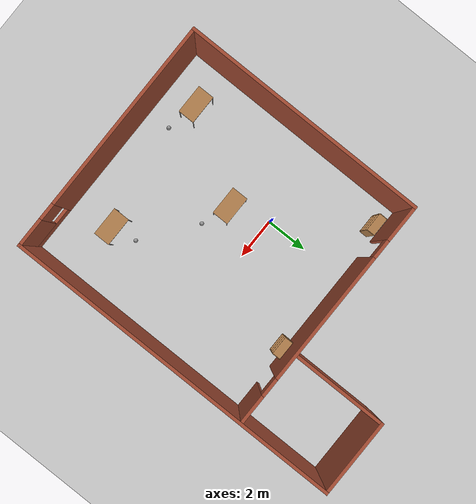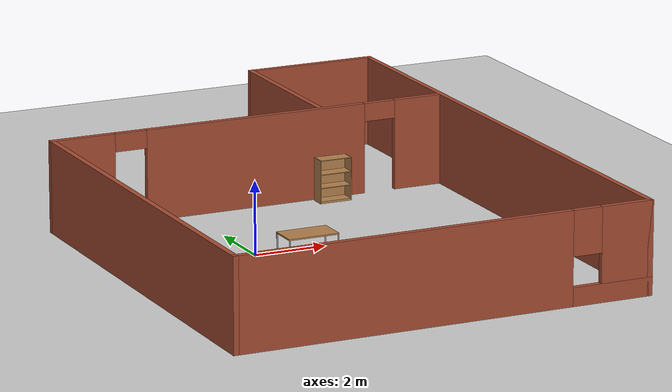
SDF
<sdf version="1.6">
 <world name="default">
  <light name="sun" type="directional">
   <pose>0 0 10 0 -0 0</pose>
   <diffuse>0.8 0.8 0.8 1</diffuse>
   <specular>0.1 0.1 0.1 1</specular>
   <attenuation>
    <range>1000</range>
    <constant>0.9</constant>
    <linear>0.01</linear>
    <quadratic>0.001</quadratic>
   </attenuation>
   <direction>-0.5 0.5 -1</direction>
  </light>
  <model name="ground_plane">
   <static>1</static>
   <link name="link">
    <collision name="collision">
     <geometry><plane><normal>0 0 1</normal><size>100 100</size></plane></geometry>
     <surface><friction><ode><mu>100</mu><mu2>50</mu2></ode></friction></surface>
    </collision>
    <visual name="visual">
     <cast_shadows>0</cast_shadows>
     <geometry><plane><normal>0 0 1</normal><size>100 100</size></plane></geometry>
     <material>
      <script><uri>file://media/materials/scripts/gazebo.material</uri><name>Gazebo/Grey</name></script>
     </material>
    </visual>
   </link>
  </model>
  <gravity>0 0 -9.8</gravity>
  <magnetic_field>6e-06 2.3e-05 -4.2e-05</magnetic_field>
  <atmosphere type="adiabatic"/>
  <physics name="default_physics" default="0" type="ode">
   <max_step_size>0.001</max_step_size>
   <real_time_factor>1</real_time_factor>
   <real_time_update_rate>1000</real_time_update_rate>
  </physics>
  <scene><ambient>0.4 0.4 0.4 1</ambient><background>0.7 0.7 0.7 1</background><shadows>1</shadows></scene>
  <spherical_coordinates>
   <surface_model>EARTH_WGS84</surface_model>
   <latitude_deg>0</latitude_deg>
   <longitude_deg>0</longitude_deg>
   <elevation>0</elevation>
   <heading_deg>0</heading_deg>
  </spherical_coordinates>
  <model name="building01">
   <pose>1.77557 0.63986 0 0 -0 0</pose>
   <link name="Wall_13">
    <collision name="Wall_13_Collision">
     <geometry><box><size>11.75 0.15 2.5</size></box></geometry>
     <pose>0 0 1.25 0 -0 0</pose>
    </collision>
    <visual name="Wall_13_Visual">
     <pose>0 0 1.25 0 -0 0</pose>
     <geometry><box><size>11.75 0.15 2.5</size></box></geometry>
     <material>
      <script><uri>file://media/materials/scripts/gazebo.material</uri><name>Gazebo/Bricks</name></script>
      <ambient>0.921569 0.807843 0.615686 1</ambient>
     </material>
    </visual>
    <pose>-5.675 -2.25 0 0 0 -1.5708</pose>
   </link>
   <link name="Wall_14">
    <pose>0 -8.05 0 0 -0 0</pose>
    <visual name="Wall_14_Visual_0">
     <pose>-1.12749 0 1.25 0 -0 0</pose>
     <geometry><box><size>9.24501 0.15 2.5</size></box></geometry>
     <material>
      <script><uri>file://media/materials/scripts/gazebo.material</uri><name>Gazebo/Bricks</name></script>
      <ambient>0.921569 0.807843 0.615686 1</ambient>
     </material>
    </visual>
    <collision name="Wall_14_Collision_0">
     <geometry><box><size>9.24501 0.15 2.5</size></box></geometry>
     <pose>-1.12749 0 1.25 0 -0 0</pose>
    </collision>
    <visual name="Wall_14_Visual_1">
     <pose>4.62251 0 0.25 0 -0 0</pose>
     <geometry><box><size>2.25499 0.15 0.5</size></box></geometry>
     <material>
      <script><uri>file://media/materials/scripts/gazebo.material</uri><name>Gazebo/Bricks</name></script>
      <ambient>0.921569 0.807843 0.615686 1</ambient>
     </material>
    </visual>
    <collision name="Wall_14_Collision_1">
     <geometry><box><size>2.25499 0.15 0.5</size></box></geometry>
     <pose>4.62251 0 0.25 0 -0 0</pose>
    </collision>
    <visual name="Wall_14_Visual_2">
     <pose>5.0225 0 1.5 0 -0 0</pose>
     <geometry><box><size>1.45499 0.15 2</size></box></geometry>
     <material>
      <script><uri>file://media/materials/scripts/gazebo.material</uri><name>Gazebo/Bricks</name></script>
      <ambient>0.921569 0.807843 0.615686 1</ambient>
     </material>
    </visual>
    <collision name="Wall_14_Collision_2">
     <geometry><box><size>1.45499 0.15 2</size></box></geometry>
     <pose>5.0225 0 1.5 0 -0 0</pose>
    </collision>
    <visual name="Wall_14_Visual_3">
     <pose>3.89501 0 1.9 0 -0 0</pose>
     <geometry><box><size>0.8 0.15 1.2</size></box></geometry>
     <material>
      <script><uri>file://media/materials/scripts/gazebo.material</uri><name>Gazebo/Bricks</name></script>
      <ambient>0.921569 0.807843 0.615686 1</ambient>
     </material>
    </visual>
    <collision name="Wall_14_Collision_3">
     <geometry><box><size>0.8 0.15 1.2</size></box></geometry>
     <pose>3.89501 0 1.9 0 -0 0</pose>
    </collision>
   </link>
   <link name="Wall_15">
    <collision name="Wall_15_Collision">
     <geometry><box><size>16.25 0.15 2.5</size></box></geometry>
     <pose>0 0 1.25 0 -0 0</pose>
    </collision>
    <visual name="Wall_15_Visual">
     <pose>0 0 1.25 0 -0 0</pose>
     <geometry><box><size>16.25 0.15 2.5</size></box></geometry>
     <material>
      <script><uri>file://media/materials/scripts/gazebo.material</uri><name>Gazebo/Bricks</name></script>
      <ambient>0.921569 0.807843 0.615686 1</ambient>
     </material>
    </visual>
    <pose>5.675 0 0 0 -0 1.5708</pose>
   </link>
   <link name="Wall_16">
    <collision name="Wall_16_Collision">
     <geometry><box><size>3.75 0.15 2.5</size></box></geometry>
     <pose>0 0 1.25 0 -0 0</pose>
    </collision>
    <visual name="Wall_16_Visual">
     <pose>0 0 1.25 0 -0 0</pose>
     <geometry><box><size>3.75 0.15 2.5</size></box></geometry>
     <material>
      <script><uri>file://media/materials/scripts/gazebo.material</uri><name>Gazebo/Bricks</name></script>
      <ambient>0.921569 0.807843 0.615686 1</ambient>
     </material>
    </visual>
    <pose>3.875 8.05 0 0 -0 3.14159</pose>
   </link>
   <link name="Wall_24">
    <pose>0 3.55 0 0 -0 0</pose>
    <visual name="Wall_24_Visual_0">
     <pose>-4.83761 0 1.25 0 -0 0</pose>
     <geometry><box><size>1.82477 0.15 2.5</size></box></geometry>
     <material>
      <script><uri>file://media/materials/scripts/gazebo.material</uri><name>Gazebo/Bricks</name></script>
      <ambient>0.921569 0.807843 0.615686 1</ambient>
     </material>
    </visual>
    <collision name="Wall_24_Collision_0">
     <geometry><box><size>1.82477 0.15 2.5</size></box></geometry>
     <pose>-4.83761 0 1.25 0 -0 0</pose>
    </collision>
    <visual name="Wall_24_Visual_1">
     <pose>0.156304 0 1.25 0 -0 0</pose>
     <geometry><box><size>6.36306 0.15 2.5</size></box></geometry>
     <material>
      <script><uri>file://media/materials/scripts/gazebo.material</uri><name>Gazebo/Bricks</name></script>
      <ambient>0.921569 0.807843 0.615686 1</ambient>
     </material>
    </visual>
    <collision name="Wall_24_Collision_1">
     <geometry><box><size>6.36306 0.15 2.5</size></box></geometry>
     <pose>0.156304 0 1.25 0 -0 0</pose>
    </collision>
    <visual name="Wall_24_Visual_2">
     <pose>4.99392 0 1.25 0 -0 0</pose>
     <geometry><box><size>1.51216 0.15 2.5</size></box></geometry>
     <material>
      <script><uri>file://media/materials/scripts/gazebo.material</uri><name>Gazebo/Bricks</name></script>
      <ambient>0.921569 0.807843 0.615686 1</ambient>
     </material>
    </visual>
    <collision name="Wall_24_Collision_2">
     <geometry><box><size>1.51216 0.15 2.5</size></box></geometry>
     <pose>4.99392 0 1.25 0 -0 0</pose>
    </collision>
    <visual name="Wall_24_Visual_3">
     <pose>-3.47523 0 2.25 0 -0 0</pose>
     <geometry><box><size>0.9 0.15 0.5</size></box></geometry>
     <material>
      <script><uri>file://media/materials/scripts/gazebo.material</uri><name>Gazebo/Bricks</name></script>
      <ambient>0.921569 0.807843 0.615686 1</ambient>
     </material>
    </visual>
    <collision name="Wall_24_Collision_3">
     <geometry><box><size>0.9 0.15 0.5</size></box></geometry>
     <pose>-3.47523 0 2.25 0 -0 0</pose>
    </collision>
    <visual name="Wall_24_Visual_4">
     <pose>3.78784 0 2.25 0 -0 0</pose>
     <geometry><box><size>0.9 0.15 0.5</size></box></geometry>
     <material>
      <script><uri>file://media/materials/scripts/gazebo.material</uri><name>Gazebo/Bricks</name></script>
      <ambient>0.921569 0.807843 0.615686 1</ambient>
     </material>
    </visual>
    <collision name="Wall_24_Collision_4">
     <geometry><box><size>0.9 0.15 0.5</size></box></geometry>
     <pose>3.78784 0 2.25 0 -0 0</pose>
    </collision>
   </link>
   <link name="Wall_28">
    <collision name="Wall_28_Collision">
     <geometry><box><size>4.5 0.15 2.5</size></box></geometry>
     <pose>0 0 1.25 0 -0 0</pose>
    </collision>
    <visual name="Wall_28_Visual">
     <pose>0 0 1.25 0 -0 0</pose>
     <geometry><box><size>4.5 0.15 2.5</size></box></geometry>
     <material>
      <script><uri>file://media/materials/scripts/gazebo.material</uri><name>Gazebo/Bricks</name></script>
      <ambient>0.921569 0.807843 0.615686 1</ambient>
     </material>
    </visual>
    <pose>2.075 5.875 0 0 0 -1.5708</pose>
   </link>
   <static>1</static>
  </model>
  <model name="table">
   <static>0</static>
   <link name="link">
    <collision name="surface">
     <pose>0 0 1 0 -0 0</pose>
     <geometry><box><size>1.5 0.8 0.03</size></box></geometry>
     <surface><friction><ode><mu>0.6</mu><mu2>0.6</mu2></ode></friction></surface>
    </collision>
    <visual name="visual1">
     <pose>0 0 1 0 -0 0</pose>
     <geometry><box><size>1.4 0.8 0.04</size></box></geometry>
     <material>
      <script><uri>file://media/materials/scripts/gazebo.material</uri><name>Gazebo/Wood</name></script>
     </material>
    </visual>
    <collision name="front_left_leg">
     <pose>0.68 0.38 0.5 0 -0 0</pose>
     <geometry><cylinder><radius>0.02</radius><length>1</length></cylinder></geometry>
    </collision>
    <visual name="front_left_leg">
     <pose>0.68 0.38 0.5 0 -0 0</pose>
     <geometry><cylinder><radius>0.02</radius><length>1</length></cylinder></geometry>
     <material>
      <script><uri>file://media/materials/scripts/gazebo.material</uri><name>Gazebo/Grey</name></script>
     </material>
    </visual>
    <collision name="front_right_leg">
     <pose>0.68 -0.38 0.5 0 -0 0</pose>
     <geometry><cylinder><radius>0.02</radius><length>1</length></cylinder></geometry>
    </collision>
    <visual name="front_right_leg">
     <pose>0.68 -0.38 0.5 0 -0 0</pose>
     <geometry><cylinder><radius>0.02</radius><length>1</length></cylinder></geometry>
     <material>
      <script><uri>file://media/materials/scripts/gazebo.material</uri><name>Gazebo/Grey</name></script>
     </material>
    </visual>
    <collision name="back_right_leg">
     <pose>-0.68 -0.38 0.5 0 -0 0</pose>
     <geometry><cylinder><radius>0.02</radius><length>1</length></cylinder></geometry>
    </collision>
    <visual name="back_right_leg">
     <pose>-0.68 -0.38 0.5 0 -0 0</pose>
     <geometry><cylinder><radius>0.02</radius><length>1</length></cylinder></geometry>
     <material>
      <script><uri>file://media/materials/scripts/gazebo.material</uri><name>Gazebo/Grey</name></script>
     </material>
    </visual>
    <collision name="back_left_leg">
     <pose>-0.68 0.38 0.5 0 -0 0</pose>
     <geometry><cylinder><radius>0.02</radius><length>1</length></cylinder></geometry>
    </collision>
    <visual name="back_left_leg">
     <pose>-0.68 0.38 0.5 0 -0 0</pose>
     <geometry><cylinder><radius>0.02</radius><length>1</length></cylinder></geometry>
     <material>
      <script><uri>file://media/materials/scripts/gazebo.material</uri><name>Gazebo/Grey</name></script>
     </material>
    </visual>
    <inertial>
     <inertia><ixx>1</ixx><ixy>0</ixy><ixz>0</ixz><iyy>1</iyy><iyz>0</iyz><izz>1</izz></inertia>
     <mass>1</mass>
    </inertial>
   </link>
   <pose>-1.85729 -5.72738 -9e-06 1e-06 -1e-06 0</pose>
  </model>
  <model name="bookshelf">
   <static>1</static>
   <link name="link">
    <inertial><mass>1</mass></inertial>
    <collision name="back">
     <pose>0 0.005 0.6 0 -0 0</pose>
     <geometry><box><size>0.9 0.01 1.2</size></box></geometry>
    </collision>
    <visual name="visual1">
     <pose>0 0.005 0.6 0 -0 0</pose>
     <geometry><box><size>0.9 0.01 1.2</size></box></geometry>
     <material>
      <script><uri>file://media/materials/scripts/gazebo.material</uri><name>Gazebo/Wood</name></script>
     </material>
    </visual>
    <collision name="left_side">
     <pose>0.45 -0.195 0.6 0 -0 0</pose>
     <geometry><box><size>0.02 0.4 1.2</size></box></geometry>
    </collision>
    <visual name="visual2">
     <pose>0.45 -0.195 0.6 0 -0 0</pose>
     <geometry><box><size>0.02 0.4 1.2</size></box></geometry>
     <material>
      <script><uri>file://media/materials/scripts/gazebo.material</uri><name>Gazebo/Wood</name></script>
     </material>
    </visual>
    <collision name="right_side">
     <pose>-0.45 -0.195 0.6 0 -0 0</pose>
     <geometry><box><size>0.02 0.4 1.2</size></box></geometry>
    </collision>
    <visual name="visual3">
     <pose>-0.45 -0.195 0.6 0 -0 0</pose>
     <geometry><box><size>0.02 0.4 1.2</size></box></geometry>
     <material>
      <script><uri>file://media/materials/scripts/gazebo.material</uri><name>Gazebo/Wood</name></script>
     </material>
    </visual>
    <collision name="bottom">
     <pose>0 -0.195 0.03 0 -0 0</pose>
     <geometry><box><size>0.88 0.4 0.06</size></box></geometry>
    </collision>
    <visual name="visual4">
     <pose>0 -0.195 0.03 0 -0 0</pose>
     <geometry><box><size>0.88 0.4 0.06</size></box></geometry>
     <material>
      <script><uri>file://media/materials/scripts/gazebo.material</uri><name>Gazebo/Wood</name></script>
     </material>
    </visual>
    <collision name="top">
     <pose>0 -0.195 1.19 0 -0 0</pose>
     <geometry><box><size>0.88 0.4 0.02</size></box></geometry>
    </collision>
    <visual name="visual5">
     <pose>0 -0.195 1.19 0 -0 0</pose>
     <geometry><box><size>0.88 0.4 0.02</size></box></geometry>
     <material>
      <script><uri>file://media/materials/scripts/gazebo.material</uri><name>Gazebo/Wood</name></script>
     </material>
    </visual>
    <collision name="low_shelf">
     <pose>0 -0.195 0.43 0 -0 0</pose>
     <geometry><box><size>0.88 0.4 0.02</size></box></geometry>
    </collision>
    <visual name="visual6">
     <pose>0 -0.195 0.43 0 -0 0</pose>
     <geometry><box><size>0.88 0.4 0.02</size></box></geometry>
     <material>
      <script><uri>file://media/materials/scripts/gazebo.material</uri><name>Gazebo/Wood</name></script>
     </material>
    </visual>
    <collision name="high_shelf">
     <pose>0 -0.195 0.8 0 -0 0</pose>
     <geometry><box><size>0.88 0.4 0.02</size></box></geometry>
    </collision>
    <visual name="visual7">
     <pose>0 -0.195 0.8 0 -0 0</pose>
     <geometry><box><size>0.88 0.4 0.02</size></box></geometry>
     <material>
      <script><uri>file://media/materials/scripts/gazebo.material</uri><name>Gazebo/Wood</name></script>
     </material>
    </visual>
   </link>
   <pose>-2.68812 3.85542 0 0 -0 0</pose>
  </model>
  <model name="table_clone">
   <static>0</static>
   <link name="link">
    <collision name="surface">
     <pose>0 0 1 0 -0 0</pose>
     <geometry><box><size>1.5 0.8 0.03</size></box></geometry>
     <surface><friction><ode><mu>0.6</mu><mu2>0.6</mu2></ode></friction></surface>
    </collision>
    <visual name="visual1">
     <pose>0 0 1 0 -0 0</pose>
     <geometry><box><size>1.4 0.8 0.04</size></box></geometry>
     <material>
      <script><uri>file://media/materials/scripts/gazebo.material</uri><name>Gazebo/Wood</name></script>
     </material>
    </visual>
    <collision name="front_left_leg">
     <pose>0.68 0.38 0.5 0 -0 0</pose>
     <geometry><cylinder><radius>0.02</radius><length>1</length></cylinder></geometry>
    </collision>
    <visual name="front_left_leg">
     <pose>0.68 0.38 0.5 0 -0 0</pose>
     <geometry><cylinder><radius>0.02</radius><length>1</length></cylinder></geometry>
     <material>
      <script><uri>file://media/materials/scripts/gazebo.material</uri><name>Gazebo/Grey</name></script>
     </material>
    </visual>
    <collision name="front_right_leg">
     <pose>0.68 -0.38 0.5 0 -0 0</pose>
     <geometry><cylinder><radius>0.02</radius><length>1</length></cylinder></geometry>
    </collision>
    <visual name="front_right_leg">
     <pose>0.68 -0.38 0.5 0 -0 0</pose>
     <geometry><cylinder><radius>0.02</radius><length>1</length></cylinder></geometry>
     <material>
      <script><uri>file://media/materials/scripts/gazebo.material</uri><name>Gazebo/Grey</name></script>
     </material>
    </visual>
    <collision name="back_right_leg">
     <pose>-0.68 -0.38 0.5 0 -0 0</pose>
     <geometry><cylinder><radius>0.02</radius><length>1</length></cylinder></geometry>
    </collision>
    <visual name="back_right_leg">
     <pose>-0.68 -0.38 0.5 0 -0 0</pose>
     <geometry><cylinder><radius>0.02</radius><length>1</length></cylinder></geometry>
     <material>
      <script><uri>file://media/materials/scripts/gazebo.material</uri><name>Gazebo/Grey</name></script>
     </material>
    </visual>
    <collision name="back_left_leg">
     <pose>-0.68 0.38 0.5 0 -0 0</pose>
     <geometry><cylinder><radius>0.02</radius><length>1</length></cylinder></geometry>
    </collision>
    <visual name="back_left_leg">
     <pose>-0.68 0.38 0.5 0 -0 0</pose>
     <geometry><cylinder><radius>0.02</radius><length>1</length></cylinder></geometry>
     <material>
      <script><uri>file://media/materials/scripts/gazebo.material</uri><name>Gazebo/Grey</name></script>
     </material>
    </visual>
    <inertial>
     <inertia><ixx>1</ixx><ixy>0</ixy><ixz>0</ixz><iyy>1</iyy><iyz>0</iyz><izz>1</izz></inertia>
     <mass>1</mass>
    </inertial>
   </link>
   <pose>0.650712 -1.80102 -7e-06 -3e-06 -2e-06 0</pose>
  </model>
  <model name="table_clone_clone">
   <static>0</static>
   <link name="link">
    <collision name="surface">
     <pose>0 0 1 0 -0 0</pose>
     <geometry><box><size>1.5 0.8 0.03</size></box></geometry>
     <surface><friction><ode><mu>0.6</mu><mu2>0.6</mu2></ode></friction></surface>
    </collision>
    <visual name="visual1">
     <pose>0 0 1 0 -0 0</pose>
     <geometry><box><size>1.4 0.8 0.04</size></box></geometry>
     <material>
      <script><uri>file://media/materials/scripts/gazebo.material</uri><name>Gazebo/Wood</name></script>
     </material>
    </visual>
    <collision name="front_left_leg">
     <pose>0.68 0.38 0.5 0 -0 0</pose>
     <geometry><cylinder><radius>0.02</radius><length>1</length></cylinder></geometry>
    </collision>
    <visual name="front_left_leg">
     <pose>0.68 0.38 0.5 0 -0 0</pose>
     <geometry><cylinder><radius>0.02</radius><length>1</length></cylinder></geometry>
     <material>
      <script><uri>file://media/materials/scripts/gazebo.material</uri><name>Gazebo/Grey</name></script>
     </material>
    </visual>
    <collision name="front_right_leg">
     <pose>0.68 -0.38 0.5 0 -0 0</pose>
     <geometry><cylinder><radius>0.02</radius><length>1</length></cylinder></geometry>
    </collision>
    <visual name="front_right_leg">
     <pose>0.68 -0.38 0.5 0 -0 0</pose>
     <geometry><cylinder><radius>0.02</radius><length>1</length></cylinder></geometry>
     <material>
      <script><uri>file://media/materials/scripts/gazebo.material</uri><name>Gazebo/Grey</name></script>
     </material>
    </visual>
    <collision name="back_right_leg">
     <pose>-0.68 -0.38 0.5 0 -0 0</pose>
     <geometry><cylinder><radius>0.02</radius><length>1</length></cylinder></geometry>
    </collision>
    <visual name="back_right_leg">
     <pose>-0.68 -0.38 0.5 0 -0 0</pose>
     <geometry><cylinder><radius>0.02</radius><length>1</length></cylinder></geometry>
     <material>
      <script><uri>file://media/materials/scripts/gazebo.material</uri><name>Gazebo/Grey</name></script>
     </material>
    </visual>
    <collision name="back_left_leg">
     <pose>-0.68 0.38 0.5 0 -0 0</pose>
     <geometry><cylinder><radius>0.02</radius><length>1</length></cylinder></geometry>
    </collision>
    <visual name="back_left_leg">
     <pose>-0.68 0.38 0.5 0 -0 0</pose>
     <geometry><cylinder><radius>0.02</radius><length>1</length></cylinder></geometry>
     <material>
      <script><uri>file://media/materials/scripts/gazebo.material</uri><name>Gazebo/Grey</name></script>
     </material>
    </visual>
    <inertial>
     <inertia><ixx>1</ixx><ixy>0</ixy><ixz>0</ixz><iyy>1</iyy><iyz>0</iyz><izz>1</izz></inertia>
     <mass>1</mass>
    </inertial>
   </link>
   <pose>4.59804 -5.25559 -1e-06 0 1e-06 0</pose>
  </model>
  <model name="bookshelf_clone">
   <static>1</static>
   <link name="link">
    <inertial><mass>1</mass></inertial>
    <collision name="back">
     <pose>0 0.005 0.6 0 -0 0</pose>
     <geometry><box><size>0.9 0.01 1.2</size></box></geometry>
    </collision>
    <visual name="visual1">
     <pose>0 0.005 0.6 0 -0 0</pose>
     <geometry><box><size>0.9 0.01 1.2</size></box></geometry>
     <material>
      <script><uri>file://media/materials/scripts/gazebo.material</uri><name>Gazebo/Wood</name></script>
     </material>
    </visual>
    <collision name="left_side">
     <pose>0.45 -0.195 0.6 0 -0 0</pose>
     <geometry><box><size>0.02 0.4 1.2</size></box></geometry>
    </collision>
    <visual name="visual2">
     <pose>0.45 -0.195 0.6 0 -0 0</pose>
     <geometry><box><size>0.02 0.4 1.2</size></box></geometry>
     <material>
      <script><uri>file://media/materials/scripts/gazebo.material</uri><name>Gazebo/Wood</name></script>
     </material>
    </visual>
    <collision name="right_side">
     <pose>-0.45 -0.195 0.6 0 -0 0</pose>
     <geometry><box><size>0.02 0.4 1.2</size></box></geometry>
    </collision>
    <visual name="visual3">
     <pose>-0.45 -0.195 0.6 0 -0 0</pose>
     <geometry><box><size>0.02 0.4 1.2</size></box></geometry>
     <material>
      <script><uri>file://media/materials/scripts/gazebo.material</uri><name>Gazebo/Wood</name></script>
     </material>
    </visual>
    <collision name="bottom">
     <pose>0 -0.195 0.03 0 -0 0</pose>
     <geometry><box><size>0.88 0.4 0.06</size></box></geometry>
    </collision>
    <visual name="visual4">
     <pose>0 -0.195 0.03 0 -0 0</pose>
     <geometry><box><size>0.88 0.4 0.06</size></box></geometry>
     <material>
      <script><uri>file://media/materials/scripts/gazebo.material</uri><name>Gazebo/Wood</name></script>
     </material>
    </visual>
    <collision name="top">
     <pose>0 -0.195 1.19 0 -0 0</pose>
     <geometry><box><size>0.88 0.4 0.02</size></box></geometry>
    </collision>
    <visual name="visual5">
     <pose>0 -0.195 1.19 0 -0 0</pose>
     <geometry><box><size>0.88 0.4 0.02</size></box></geometry>
     <material>
      <script><uri>file://media/materials/scripts/gazebo.material</uri><name>Gazebo/Wood</name></script>
     </material>
    </visual>
    <collision name="low_shelf">
     <pose>0 -0.195 0.43 0 -0 0</pose>
     <geometry><box><size>0.88 0.4 0.02</size></box></geometry>
    </collision>
    <visual name="visual6">
     <pose>0 -0.195 0.43 0 -0 0</pose>
     <geometry><box><size>0.88 0.4 0.02</size></box></geometry>
     <material>
      <script><uri>file://media/materials/scripts/gazebo.material</uri><name>Gazebo/Wood</name></script>
     </material>
    </visual>
    <collision name="high_shelf">
     <pose>0 -0.195 0.8 0 -0 0</pose>
     <geometry><box><size>0.88 0.4 0.02</size></box></geometry>
    </collision>
    <visual name="visual7">
     <pose>0 -0.195 0.8 0 -0 0</pose>
     <geometry><box><size>0.88 0.4 0.02</size></box></geometry>
     <material>
      <script><uri>file://media/materials/scripts/gazebo.material</uri><name>Gazebo/Wood</name></script>
     </material>
    </visual>
   </link>
   <pose>4.03762 4.03675 0 0 -0 0</pose>
  </model>
  <model name="my_ball_clone">
   <link name="link_0">
    <inertial>
     <mass>1</mass>
     <inertia><ixx>0.1</ixx><ixy>0</ixy><ixz>0</ixz><iyy>0.1</iyy><iyz>0</iyz><izz>0.1</izz></inertia>
    </inertial>
    <visual name="visual">
     <geometry><sphere><radius>0.1</radius></sphere></geometry>
     <material>
      <lighting>1</lighting>
      <script><uri>file://media/materials/scripts/gazebo.material</uri><name>Gazebo/Grey</name></script>
      <ambient>1 1 1 1</ambient>
      <diffuse>1 1 1 1</diffuse>
      <specular>1 1 1 1</specular>
      <emissive>1 1 1 1</emissive>
      <shader type="vertex"><normal_map>__default__</normal_map></shader>
     </material>
    </visual>
    <collision name="collision">
     <geometry><sphere><radius>0.1</radius></sphere></geometry>
     <surface>
      <friction>
       <ode><mu>1</mu><mu2>1</mu2><fdir1>0 0 0</fdir1><slip1>0</slip1><slip2>0</slip2></ode>
       <torsional>
        <coefficient>1</coefficient>
        <patch_radius>0</patch_radius>
        <surface_radius>0</surface_radius>
        <use_patch_radius>1</use_patch_radius>
        <ode><slip>0</slip></ode>
       </torsional>
      </friction>
      <bounce><restitution_coefficient>0</restitution_coefficient><threshold>1e+06</threshold></bounce>
      <contact>
       <collide_without_contact>0</collide_without_contact>
       <collide_without_contact_bitmask>1</collide_without_contact_bitmask>
       <collide_bitmask>1</collide_bitmask>
       <ode>
        <soft_cfm>0</soft_cfm>
        <soft_erp>0.2</soft_erp>
        <kp>1e+13</kp>
        <kd>1</kd>
        <max_vel>0.01</max_vel>
        <min_depth>0</min_depth>
       </ode>
       <bullet>
        <split_impulse>1</split_impulse>
        <split_impulse_penetration_threshold>-0.01</split_impulse_penetration_threshold>
        <soft_cfm>0</soft_cfm>
        <soft_erp>0.2</soft_erp>
        <kp>1e+13</kp>
        <kd>1</kd>
       </bullet>
      </contact>
     </surface>
    </collision>
   </link>
   <static>0</static>
   <pose>1.99749 -2.33697 0.1 0 -0 0</pose>
  </model>
  <model name="my_ball_clone_clone">
   <link name="link_0">
    <inertial>
     <mass>1</mass>
     <inertia><ixx>0.1</ixx><ixy>0</ixy><ixz>0</ixz><iyy>0.1</iyy><iyz>0</iyz><izz>0.1</izz></inertia>
    </inertial>
    <visual name="visual">
     <geometry><sphere><radius>0.1</radius></sphere></geometry>
     <material>
      <lighting>1</lighting>
      <script><uri>file://media/materials/scripts/gazebo.material</uri><name>Gazebo/Grey</name></script>
      <ambient>1 1 1 1</ambient>
      <diffuse>1 1 1 1</diffuse>
      <specular>1 1 1 1</specular>
      <emissive>1 1 1 1</emissive>
      <shader type="vertex"><normal_map>__default__</normal_map></shader>
     </material>
    </visual>
    <collision name="collision">
     <geometry><sphere><radius>0.1</radius></sphere></geometry>
     <surface>
      <friction>
       <ode><mu>1</mu><mu2>1</mu2><fdir1>0 0 0</fdir1><slip1>0</slip1><slip2>0</slip2></ode>
       <torsional>
        <coefficient>1</coefficient>
        <patch_radius>0</patch_radius>
        <surface_radius>0</surface_radius>
        <use_patch_radius>1</use_patch_radius>
        <ode><slip>0</slip></ode>
       </torsional>
      </friction>
      <bounce><restitution_coefficient>0</restitution_coefficient><threshold>1e+06</threshold></bounce>
      <contact>
       <collide_without_contact>0</collide_without_contact>
       <collide_without_contact_bitmask>1</collide_without_contact_bitmask>
       <collide_bitmask>1</collide_bitmask>
       <ode>
        <soft_cfm>0</soft_cfm>
        <soft_erp>0.2</soft_erp>
        <kp>1e+13</kp>
        <kd>1</kd>
        <max_vel>0.01</max_vel>
        <min_depth>0</min_depth>
       </ode>
       <bullet>
        <split_impulse>1</split_impulse>
        <split_impulse_penetration_threshold>-0.01</split_impulse_penetration_threshold>
        <soft_cfm>0</soft_cfm>
        <soft_erp>0.2</soft_erp>
        <kp>1e+13</kp>
        <kd>1</kd>
       </bullet>
      </contact>
     </surface>
    </collision>
   </link>
   <static>0</static>
   <pose>-0.439936 -6.21476 0.1 0 -0 0</pose>
  </model>
  <model name="my_ball_clone_clone_0">
   <link name="link_0">
    <inertial>
     <mass>1</mass>
     <inertia><ixx>0.1</ixx><ixy>0</ixy><ixz>0</ixz><iyy>0.1</iyy><iyz>0</iyz><izz>0.1</izz></inertia>
    </inertial>
    <visual name="visual">
     <geometry><sphere><radius>0.1</radius></sphere></geometry>
     <material>
      <lighting>1</lighting>
      <script><uri>file://media/materials/scripts/gazebo.material</uri><name>Gazebo/Grey</name></script>
      <ambient>1 1 1 1</ambient>
      <diffuse>1 1 1 1</diffuse>
      <specular>1 1 1 1</specular>
      <emissive>1 1 1 1</emissive>
      <shader type="vertex"><normal_map>__default__</normal_map></shader>
     </material>
    </visual>
    <collision name="collision">
     <geometry><sphere><radius>0.1</radius></sphere></geometry>
     <surface>
      <friction>
       <ode><mu>1</mu><mu2>1</mu2><fdir1>0 0 0</fdir1><slip1>0</slip1><slip2>0</slip2></ode>
       <torsional>
        <coefficient>1</coefficient>
        <patch_radius>0</patch_radius>
        <surface_radius>0</surface_radius>
        <use_patch_radius>1</use_patch_radius>
        <ode><slip>0</slip></ode>
       </torsional>
      </friction>
      <bounce><restitution_coefficient>0</restitution_coefficient><threshold>1e+06</threshold></bounce>
      <contact>
       <collide_without_contact>0</collide_without_contact>
       <collide_without_contact_bitmask>1</collide_without_contact_bitmask>
       <collide_bitmask>1</collide_bitmask>
       <ode>
        <soft_cfm>0</soft_cfm>
        <soft_erp>0.2</soft_erp>
        <kp>1e+13</kp>
        <kd>1</kd>
        <max_vel>0.01</max_vel>
        <min_depth>0</min_depth>
       </ode>
       <bullet>
        <split_impulse>1</split_impulse>
        <split_impulse_penetration_threshold>-0.01</split_impulse_penetration_threshold>
        <soft_cfm>0</soft_cfm>
        <soft_erp>0.2</soft_erp>
        <kp>1e+13</kp>
        <kd>1</kd>
       </bullet>
      </contact>
     </surface>
    </collision>
   </link>
   <static>0</static>
   <pose>4.46994 -4.17991 0.1 0 -0 0</pose>
  </model>
 </world>
</sdf>
